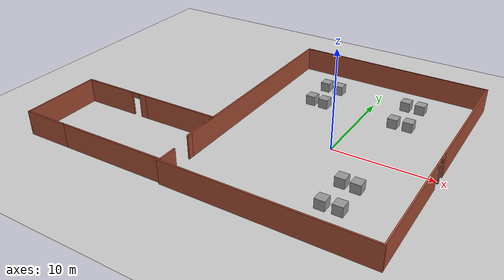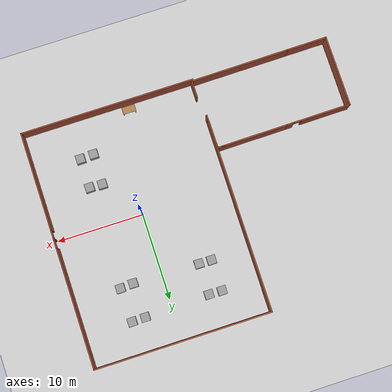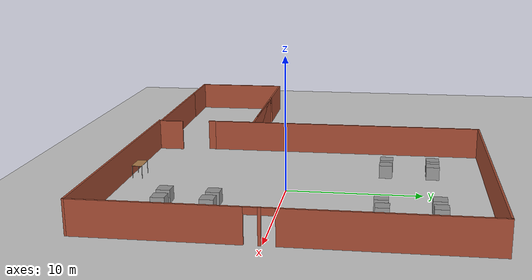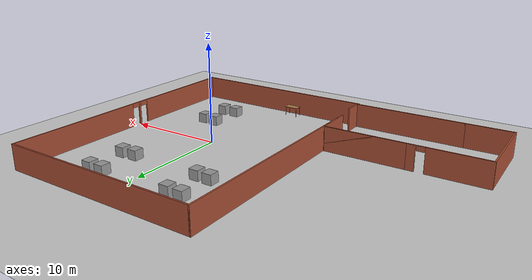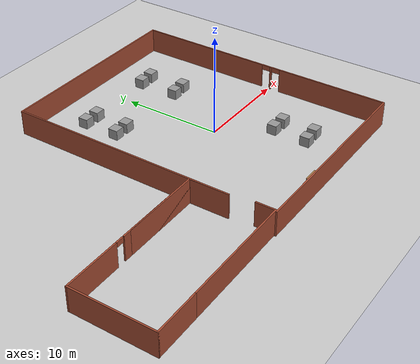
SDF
<sdf version="1.7">
 <world name="default">
  <light name="sun" type="directional">
   <pose>0 0 10 0 -0 0</pose>
   <diffuse>0.8 0.8 0.8 1</diffuse>
   <specular>0.2 0.2 0.2 1</specular>
   <attenuation>
    <range>1000</range>
    <constant>0.9</constant>
    <linear>0.01</linear>
    <quadratic>0.001</quadratic>
   </attenuation>
   <direction>-0.5 0.1 -0.9</direction>
   <spot><inner_angle>0</inner_angle><outer_angle>0</outer_angle><falloff>0</falloff></spot>
  </light>
  <model name="ground_plane">
   <static>1</static>
   <link name="link">
    <collision name="collision">
     <geometry><plane><normal>0 0 1</normal><size>100 100</size></plane></geometry>
     <surface>
      <contact><collide_bitmask>65535</collide_bitmask></contact>
      <friction><ode><mu>100</mu><mu2>50</mu2></ode></friction>
     </surface>
    </collision>
    <visual name="visual">
     <cast_shadows>0</cast_shadows>
     <geometry><plane><normal>0 0 1</normal><size>100 100</size></plane></geometry>
     <material>
      <script><uri>file://media/materials/scripts/gazebo.material</uri><name>Gazebo/Grey</name></script>
     </material>
    </visual>
   </link>
  </model>
  <gravity>0 0 -9.8</gravity>
  <magnetic_field>6e-06 2.3e-05 -4.2e-05</magnetic_field>
  <atmosphere type="adiabatic"/>
  <physics type="ode">
   <max_step_size>0.001</max_step_size>
   <real_time_factor>1</real_time_factor>
   <real_time_update_rate>1000</real_time_update_rate>
  </physics>
  <scene><ambient>0.4 0.4 0.4 1</ambient><background>0.7 0.7 0.7 1</background><shadows>1</shadows></scene>
  <audio><device>default</device></audio>
  <spherical_coordinates>
   <surface_model>EARTH_WGS84</surface_model>
   <latitude_deg>0</latitude_deg>
   <longitude_deg>0</longitude_deg>
   <elevation>0</elevation>
   <heading_deg>0</heading_deg>
  </spherical_coordinates>
  <model name="cafe_new_main">
   <pose>-0.0419 1.10315 0 0 -0 0</pose>
   <link name="Wall_0">
    <collision name="Wall_0_Collision">
     <geometry><box><size>22.5 0.15 2.5</size></box></geometry>
     <pose>0 0 1.25 0 -0 0</pose>
    </collision>
    <visual name="Wall_0_Visual">
     <pose>0 0 1.25 0 -0 0</pose>
     <geometry><box><size>22.5 0.15 2.5</size></box></geometry>
     <material>
      <script><uri>file://media/materials/scripts/gazebo.material</uri><name>Gazebo/Bricks</name></script>
      <ambient>1 1 1 1</ambient>
     </material>
     <meta><layer>0</layer></meta>
    </visual>
    <pose>-10.175 2.5 0 0 -0 1.5708</pose>
   </link>
   <link name="Wall_1">
    <collision name="Wall_1_Collision">
     <geometry><box><size>20.5 0.15 2.5</size></box></geometry>
     <pose>0 0 1.25 0 -0 0</pose>
    </collision>
    <visual name="Wall_1_Visual">
     <pose>0 0 1.25 0 -0 0</pose>
     <geometry><box><size>20.5 0.15 2.5</size></box></geometry>
     <material>
      <script><uri>file://media/materials/scripts/gazebo.material</uri><name>Gazebo/Bricks</name></script>
      <ambient>1 1 1 1</ambient>
     </material>
     <meta><layer>0</layer></meta>
    </visual>
    <pose>-0 13.675 0 0 -0 0</pose>
   </link>
   <link name="Wall_2">
    <pose>10.175 -0 0 0 -0 -1.5708</pose>
    <visual name="Wall_2_Visual_0">
     <pose>-6.74643 0 1.25 0 -0 0</pose>
     <geometry><box><size>14.0071 0.15 2.5</size></box></geometry>
     <material>
      <script><uri>file://media/materials/scripts/gazebo.material</uri><name>Gazebo/Bricks</name></script>
      <ambient>1 1 1 1</ambient>
     </material>
     <meta><layer>0</layer></meta>
    </visual>
    <collision name="Wall_2_Collision_0">
     <geometry><box><size>14.0071 0.15 2.5</size></box></geometry>
     <pose>-6.74643 0 1.25 0 -0 0</pose>
    </collision>
    <visual name="Wall_2_Visual_1">
     <pose>1.26403 0 1.25 0 -0 0</pose>
     <geometry><box><size>0.213791 0.15 2.5</size></box></geometry>
     <material>
      <script><uri>file://media/materials/scripts/gazebo.material</uri><name>Gazebo/Bricks</name></script>
      <ambient>1 1 1 1</ambient>
     </material>
     <meta><layer>0</layer></meta>
    </visual>
    <collision name="Wall_2_Collision_1">
     <geometry><box><size>0.213791 0.15 2.5</size></box></geometry>
     <pose>1.26403 0 1.25 0 -0 0</pose>
    </collision>
    <visual name="Wall_2_Visual_2">
     <pose>8.01046 0 1.25 0 -0 0</pose>
     <geometry><box><size>11.4791 0.15 2.5</size></box></geometry>
     <material>
      <script><uri>file://media/materials/scripts/gazebo.material</uri><name>Gazebo/Bricks</name></script>
      <ambient>1 1 1 1</ambient>
     </material>
     <meta><layer>0</layer></meta>
    </visual>
    <collision name="Wall_2_Collision_2">
     <geometry><box><size>11.4791 0.15 2.5</size></box></geometry>
     <pose>8.01046 0 1.25 0 -0 0</pose>
    </collision>
    <visual name="Wall_2_Visual_3">
     <pose>0.707133 0 2.25 0 -0 0</pose>
     <geometry><box><size>0.9 0.15 0.5</size></box></geometry>
     <material>
      <script><uri>file://media/materials/scripts/gazebo.material</uri><name>Gazebo/Bricks</name></script>
      <ambient>1 1 1 1</ambient>
     </material>
     <meta><layer>0</layer></meta>
    </visual>
    <collision name="Wall_2_Collision_3">
     <geometry><box><size>0.9 0.15 0.5</size></box></geometry>
     <pose>0.707133 0 2.25 0 -0 0</pose>
    </collision>
    <visual name="Wall_2_Visual_4">
     <pose>1.82092 0 2.25 0 -0 0</pose>
     <geometry><box><size>0.9 0.15 0.5</size></box></geometry>
     <material>
      <script><uri>file://media/materials/scripts/gazebo.material</uri><name>Gazebo/Bricks</name></script>
      <ambient>1 1 1 1</ambient>
     </material>
     <meta><layer>0</layer></meta>
    </visual>
    <collision name="Wall_2_Collision_4">
     <geometry><box><size>0.9 0.15 0.5</size></box></geometry>
     <pose>1.82092 0 2.25 0 -0 0</pose>
    </collision>
   </link>
   <link name="Wall_3">
    <collision name="Wall_3_Collision">
     <geometry><box><size>20.25 0.15 2.5</size></box></geometry>
     <pose>0 0 1.25 0 -0 0</pose>
    </collision>
    <visual name="Wall_3_Visual">
     <pose>0 0 1.25 0 -0 0</pose>
     <geometry><box><size>20.25 0.15 2.5</size></box></geometry>
     <material>
      <script><uri>file://media/materials/scripts/gazebo.material</uri><name>Gazebo/Bricks</name></script>
      <ambient>1 1 1 1</ambient>
     </material>
     <meta><layer>0</layer></meta>
    </visual>
    <pose>0.125 -13.675 0 0 -0 3.14159</pose>
   </link>
   <static>1</static>
  </model>
  <model name="cafe_new">
   <pose>-17.8378 -8.4218 0 0 0 -3.13323</pose>
   <link name="Wall_1">
    <collision name="Wall_1_Collision">
     <geometry><box><size>2 0.15 2.5</size></box></geometry>
     <pose>0 0 1.25 0 -0 0</pose>
    </collision>
    <visual name="Wall_1_Visual">
     <pose>0 0 1.25 0 -0 0</pose>
     <geometry><box><size>2 0.15 2.5</size></box></geometry>
     <material>
      <script><uri>file://media/materials/scripts/gazebo.material</uri><name>Gazebo/Bricks</name></script>
      <ambient>1 1 1 1</ambient>
     </material>
     <meta><layer>0</layer></meta>
    </visual>
    <pose>-7.975 3.125 0 0 -0 1.5708</pose>
   </link>
   <link name="Wall_2">
    <collision name="Wall_2_Collision">
     <geometry><box><size>11.5 0.15 2.5</size></box></geometry>
     <pose>0 0 1.25 0 -0 0</pose>
    </collision>
    <visual name="Wall_2_Visual">
     <pose>0 0 1.25 0 -0 0</pose>
     <geometry><box><size>11.5 0.15 2.5</size></box></geometry>
     <material>
      <script><uri>file://media/materials/scripts/gazebo.material</uri><name>Gazebo/Bricks</name></script>
      <ambient>1 1 1 1</ambient>
     </material>
     <meta><layer>0</layer></meta>
    </visual>
    <pose>-2.3 4.05 0 0 -0 0</pose>
   </link>
   <link name="Wall_3">
    <collision name="Wall_3_Collision">
     <geometry><box><size>4.75 0.15 2.5</size></box></geometry>
     <pose>0 0 1.25 0 -0 0</pose>
    </collision>
    <visual name="Wall_3_Visual">
     <pose>0 0 1.25 0 -0 0</pose>
     <geometry><box><size>4.75 0.15 2.5</size></box></geometry>
     <material>
      <script><uri>file://media/materials/scripts/gazebo.material</uri><name>Gazebo/Bricks</name></script>
      <ambient>1 1 1 1</ambient>
     </material>
     <meta><layer>0</layer></meta>
    </visual>
    <pose>5.675 4.05 0 0 -0 0</pose>
   </link>
   <link name="Wall_4">
    <collision name="Wall_4_Collision">
     <geometry><box><size>8.25 0.15 2.5</size></box></geometry>
     <pose>0 0 1.25 0 -0 0</pose>
    </collision>
    <visual name="Wall_4_Visual">
     <pose>0 0 1.25 0 -0 0</pose>
     <geometry><box><size>8.25 0.15 2.5</size></box></geometry>
     <material>
      <script><uri>file://media/materials/scripts/gazebo.material</uri><name>Gazebo/Bricks</name></script>
      <ambient>1 1 1 1</ambient>
     </material>
     <meta><layer>0</layer></meta>
    </visual>
    <pose>7.975 -0 0 0 -0 -1.5708</pose>
   </link>
   <link name="Wall_5">
    <pose>0.175 -4.05 0 0 -0 3.14159</pose>
    <visual name="Wall_5_Visual_0">
     <pose>-4.96927 0 1.25 0 -0 0</pose>
     <geometry><box><size>5.81146 0.15 2.5</size></box></geometry>
     <material>
      <script><uri>file://media/materials/scripts/gazebo.material</uri><name>Gazebo/Bricks</name></script>
      <ambient>1 1 1 1</ambient>
     </material>
     <meta><layer>0</layer></meta>
    </visual>
    <collision name="Wall_5_Collision_0">
     <geometry><box><size>5.81146 0.15 2.5</size></box></geometry>
     <pose>-4.96927 0 1.25 0 -0 0</pose>
    </collision>
    <visual name="Wall_5_Visual_1">
     <pose>3.35573 0 1.25 0 -0 0</pose>
     <geometry><box><size>9.03854 0.15 2.5</size></box></geometry>
     <material>
      <script><uri>file://media/materials/scripts/gazebo.material</uri><name>Gazebo/Bricks</name></script>
      <ambient>1 1 1 1</ambient>
     </material>
     <meta><layer>0</layer></meta>
    </visual>
    <collision name="Wall_5_Collision_1">
     <geometry><box><size>9.03854 0.15 2.5</size></box></geometry>
     <pose>3.35573 0 1.25 0 -0 0</pose>
    </collision>
    <visual name="Wall_5_Visual_2">
     <pose>3.76029 0 1.25 0 -0 0</pose>
     <geometry><box><size>8.22943 0.15 2.5</size></box></geometry>
     <material>
      <script><uri>file://media/materials/scripts/gazebo.material</uri><name>Gazebo/Bricks</name></script>
      <ambient>1 1 1 1</ambient>
     </material>
     <meta><layer>0</layer></meta>
    </visual>
    <collision name="Wall_5_Collision_2">
     <geometry><box><size>8.22943 0.15 2.5</size></box></geometry>
     <pose>3.76029 0 1.25 0 -0 0</pose>
    </collision>
    <visual name="Wall_5_Visual_3">
     <pose>-1.65898 0 2.25 0 -0 0</pose>
     <geometry><box><size>0.809112 0.15 0.5</size></box></geometry>
     <material>
      <script><uri>file://media/materials/scripts/gazebo.material</uri><name>Gazebo/Bricks</name></script>
      <ambient>1 1 1 1</ambient>
     </material>
     <meta><layer>0</layer></meta>
    </visual>
    <collision name="Wall_5_Collision_3">
     <geometry><box><size>0.809112 0.15 0.5</size></box></geometry>
     <pose>-1.65898 0 2.25 0 -0 0</pose>
    </collision>
   </link>
   <link name="Wall_6">
    <collision name="Wall_6_Collision">
     <geometry><box><size>4 0.15 2.5</size></box></geometry>
     <pose>0 0 1.25 0 -0 0</pose>
    </collision>
    <visual name="Wall_6_Visual">
     <pose>0 0 1.25 0 -0 0</pose>
     <geometry><box><size>4 0.15 2.5</size></box></geometry>
     <material>
      <script><uri>file://media/materials/scripts/gazebo.material</uri><name>Gazebo/Bricks</name></script>
      <ambient>1 1 1 1</ambient>
     </material>
     <meta><layer>0</layer></meta>
    </visual>
    <pose>-7.625 -2.125 0 0 -0 1.5708</pose>
   </link>
   <static>1</static>
  </model>
  <model name="table">
   <static>1</static>
   <link name="link">
    <collision name="surface">
     <pose>0 0 1 0 -0 0</pose>
     <geometry><box><size>1.5 0.8 0.03</size></box></geometry>
     <surface><friction><ode><mu>0.6</mu><mu2>0.6</mu2></ode></friction></surface>
    </collision>
    <visual name="visual1">
     <pose>0 0 1 0 -0 0</pose>
     <geometry><box><size>1.5 0.8 0.03</size></box></geometry>
     <material>
      <script><uri>file://media/materials/scripts/gazebo.material</uri><name>Gazebo/Wood</name></script>
     </material>
    </visual>
    <collision name="front_left_leg">
     <pose>0.68 0.38 0.5 0 -0 0</pose>
     <geometry><cylinder><radius>0.02</radius><length>1</length></cylinder></geometry>
    </collision>
    <visual name="front_left_leg">
     <pose>0.68 0.38 0.5 0 -0 0</pose>
     <geometry><cylinder><radius>0.02</radius><length>1</length></cylinder></geometry>
     <material>
      <script><uri>file://media/materials/scripts/gazebo.material</uri><name>Gazebo/Grey</name></script>
     </material>
    </visual>
    <collision name="front_right_leg">
     <pose>0.68 -0.38 0.5 0 -0 0</pose>
     <geometry><cylinder><radius>0.02</radius><length>1</length></cylinder></geometry>
    </collision>
    <visual name="front_right_leg">
     <pose>0.68 -0.38 0.5 0 -0 0</pose>
     <geometry><cylinder><radius>0.02</radius><length>1</length></cylinder></geometry>
     <material>
      <script><uri>file://media/materials/scripts/gazebo.material</uri><name>Gazebo/Grey</name></script>
     </material>
    </visual>
    <collision name="back_right_leg">
     <pose>-0.68 -0.38 0.5 0 -0 0</pose>
     <geometry><cylinder><radius>0.02</radius><length>1</length></cylinder></geometry>
    </collision>
    <visual name="back_right_leg">
     <pose>-0.68 -0.38 0.5 0 -0 0</pose>
     <geometry><cylinder><radius>0.02</radius><length>1</length></cylinder></geometry>
     <material>
      <script><uri>file://media/materials/scripts/gazebo.material</uri><name>Gazebo/Grey</name></script>
     </material>
    </visual>
    <collision name="back_left_leg">
     <pose>-0.68 0.38 0.5 0 -0 0</pose>
     <geometry><cylinder><radius>0.02</radius><length>1</length></cylinder></geometry>
    </collision>
    <visual name="back_left_leg">
     <pose>-0.68 0.38 0.5 0 -0 0</pose>
     <geometry><cylinder><radius>0.02</radius><length>1</length></cylinder></geometry>
     <material>
      <script><uri>file://media/materials/scripts/gazebo.material</uri><name>Gazebo/Grey</name></script>
     </material>
    </visual>
   </link>
   <pose>-2.15948 -11.8384 0 0 -0 0</pose>
  </model>
  <model name="unit_box">
   <pose>4.72104 11.0868 0.499995 -1e-05 -0 -0</pose>
   <link name="link">
    <inertial>
     <mass>1</mass>
     <inertia>
      <ixx>0.166667</ixx>
      <ixy>0</ixy>
      <ixz>0</ixz>
      <iyy>0.166667</iyy>
      <iyz>0</iyz>
      <izz>0.166667</izz>
     </inertia>
    </inertial>
    <collision name="collision"><geometry><box><size>1 1 1</size></box></geometry></collision>
    <visual name="visual">
     <geometry><box><size>1 1 1</size></box></geometry>
     <material>
      <script><name>Gazebo/Grey</name><uri>file://media/materials/scripts/gazebo.material</uri></script>
     </material>
    </visual>
   </link>
  </model>
  <model name="unit_box_0">
   <pose>3.19605 11.0505 0.499995 0 1e-05 0</pose>
   <link name="link">
    <inertial>
     <mass>1</mass>
     <inertia>
      <ixx>0.166667</ixx>
      <ixy>0</ixy>
      <ixz>0</ixz>
      <iyy>0.166667</iyy>
      <iyz>0</iyz>
      <izz>0.166667</izz>
     </inertia>
    </inertial>
    <collision name="collision"><geometry><box><size>1 1 1</size></box></geometry></collision>
    <visual name="visual">
     <geometry><box><size>1 1 1</size></box></geometry>
     <material>
      <script><name>Gazebo/Grey</name><uri>file://media/materials/scripts/gazebo.material</uri></script>
     </material>
    </visual>
   </link>
  </model>
  <model name="unit_box_1">
   <pose>4.86627 7.1654 0.499995 -1e-05 -0 -0</pose>
   <link name="link">
    <inertial>
     <mass>1</mass>
     <inertia>
      <ixx>0.166667</ixx>
      <ixy>0</ixy>
      <ixz>0</ixz>
      <iyy>0.166667</iyy>
      <iyz>0</iyz>
      <izz>0.166667</izz>
     </inertia>
    </inertial>
    <collision name="collision"><geometry><box><size>1 1 1</size></box></geometry></collision>
    <visual name="visual">
     <geometry><box><size>1 1 1</size></box></geometry>
     <material>
      <script><name>Gazebo/Grey</name><uri>file://media/materials/scripts/gazebo.material</uri></script>
     </material>
    </visual>
   </link>
  </model>
  <model name="unit_box_2">
   <pose>3.34127 7.05638 0.499995 0 1e-05 0</pose>
   <link name="link">
    <inertial>
     <mass>1</mass>
     <inertia>
      <ixx>0.166667</ixx>
      <ixy>0</ixy>
      <ixz>0</ixz>
      <iyy>0.166667</iyy>
      <iyz>0</iyz>
      <izz>0.166667</izz>
     </inertia>
    </inertial>
    <collision name="collision"><geometry><box><size>1 1 1</size></box></geometry></collision>
    <visual name="visual">
     <geometry><box><size>1 1 1</size></box></geometry>
     <material>
      <script><name>Gazebo/Grey</name><uri>file://media/materials/scripts/gazebo.material</uri></script>
     </material>
    </visual>
   </link>
  </model>
  <model name="unit_box_3">
   <pose>-4.32003 10.8327 0.499995 -1e-05 -0 -0</pose>
   <link name="link">
    <inertial>
     <mass>1</mass>
     <inertia>
      <ixx>0.166667</ixx>
      <ixy>0</ixy>
      <ixz>0</ixz>
      <iyy>0.166667</iyy>
      <iyz>0</iyz>
      <izz>0.166667</izz>
     </inertia>
    </inertial>
    <collision name="collision"><geometry><box><size>1 1 1</size></box></geometry></collision>
    <visual name="visual">
     <geometry><box><size>1 1 1</size></box></geometry>
     <material>
      <script><name>Gazebo/Grey</name><uri>file://media/materials/scripts/gazebo.material</uri></script>
     </material>
    </visual>
   </link>
  </model>
  <model name="unit_box_4">
   <pose>-5.84502 10.8691 0.499995 0 1e-05 0</pose>
   <link name="link">
    <inertial>
     <mass>1</mass>
     <inertia>
      <ixx>0.166667</ixx>
      <ixy>0</ixy>
      <ixz>0</ixz>
      <iyy>0.166667</iyy>
      <iyz>0</iyz>
      <izz>0.166667</izz>
     </inertia>
    </inertial>
    <collision name="collision"><geometry><box><size>1 1 1</size></box></geometry></collision>
    <visual name="visual">
     <geometry><box><size>1 1 1</size></box></geometry>
     <material>
      <script><name>Gazebo/Grey</name><uri>file://media/materials/scripts/gazebo.material</uri></script>
     </material>
    </visual>
   </link>
  </model>
  <model name="unit_box_5">
   <pose>-4.32003 7.23803 0.499995 -1e-05 -0 -0</pose>
   <link name="link">
    <inertial>
     <mass>1</mass>
     <inertia>
      <ixx>0.166667</ixx>
      <ixy>0</ixy>
      <ixz>0</ixz>
      <iyy>0.166667</iyy>
      <iyz>0</iyz>
      <izz>0.166667</izz>
     </inertia>
    </inertial>
    <collision name="collision"><geometry><box><size>1 1 1</size></box></geometry></collision>
    <visual name="visual">
     <geometry><box><size>1 1 1</size></box></geometry>
     <material>
      <script><name>Gazebo/Grey</name><uri>file://media/materials/scripts/gazebo.material</uri></script>
     </material>
    </visual>
   </link>
  </model>
  <model name="unit_box_6">
   <pose>-5.7724 7.27426 0.499995 0 1e-05 0</pose>
   <link name="link">
    <inertial>
     <mass>1</mass>
     <inertia>
      <ixx>0.166667</ixx>
      <ixy>0</ixy>
      <ixz>0</ixz>
      <iyy>0.166667</iyy>
      <iyz>0</iyz>
      <izz>0.166667</izz>
     </inertia>
    </inertial>
    <collision name="collision"><geometry><box><size>1 1 1</size></box></geometry></collision>
    <visual name="visual">
     <geometry><box><size>1 1 1</size></box></geometry>
     <material>
      <script><name>Gazebo/Grey</name><uri>file://media/materials/scripts/gazebo.material</uri></script>
     </material>
    </visual>
   </link>
  </model>
  <model name="unit_box_7">
   <pose>4.75736 -4.70777 0.499995 -1e-05 -0 -0</pose>
   <link name="link">
    <inertial>
     <mass>1</mass>
     <inertia>
      <ixx>0.166667</ixx>
      <ixy>0</ixy>
      <ixz>0</ixz>
      <iyy>0.166667</iyy>
      <iyz>0</iyz>
      <izz>0.166667</izz>
     </inertia>
    </inertial>
    <collision name="collision"><geometry><box><size>1 1 1</size></box></geometry></collision>
    <visual name="visual">
     <geometry><box><size>1 1 1</size></box></geometry>
     <material>
      <script><name>Gazebo/Grey</name><uri>file://media/materials/scripts/gazebo.material</uri></script>
     </material>
    </visual>
   </link>
  </model>
  <model name="unit_box_8">
   <pose>3.27623 -4.63909 0.499995 0 1e-05 0</pose>
   <link name="link">
    <inertial>
     <mass>1</mass>
     <inertia>
      <ixx>0.166667</ixx>
      <ixy>0</ixy>
      <ixz>0</ixz>
      <iyy>0.166667</iyy>
      <iyz>0</iyz>
      <izz>0.166667</izz>
     </inertia>
    </inertial>
    <collision name="collision"><geometry><box><size>1 1 1</size></box></geometry></collision>
    <visual name="visual">
     <geometry><box><size>1 1 1</size></box></geometry>
     <material>
      <script><name>Gazebo/Grey</name><uri>file://media/materials/scripts/gazebo.material</uri></script>
     </material>
    </visual>
   </link>
  </model>
  <model name="unit_box_9">
   <pose>4.76495 -8.12505 0.499995 -1e-05 -0 -0</pose>
   <link name="link">
    <inertial>
     <mass>1</mass>
     <inertia>
      <ixx>0.166667</ixx>
      <ixy>0</ixy>
      <ixz>0</ixz>
      <iyy>0.166667</iyy>
      <iyz>0</iyz>
      <izz>0.166667</izz>
     </inertia>
    </inertial>
    <collision name="collision"><geometry><box><size>1 1 1</size></box></geometry></collision>
    <visual name="visual">
     <geometry><box><size>1 1 1</size></box></geometry>
     <material>
      <script><name>Gazebo/Grey</name><uri>file://media/materials/scripts/gazebo.material</uri></script>
     </material>
    </visual>
   </link>
  </model>
  <model name="unit_box_10">
   <pose>3.20366 -8.1977 0.499995 0 1e-05 0</pose>
   <link name="link">
    <inertial>
     <mass>1</mass>
     <inertia>
      <ixx>0.166667</ixx>
      <ixy>0</ixy>
      <ixz>0</ixz>
      <iyy>0.166667</iyy>
      <iyz>0</iyz>
      <izz>0.166667</izz>
     </inertia>
    </inertial>
    <collision name="collision"><geometry><box><size>1 1 1</size></box></geometry></collision>
    <visual name="visual">
     <geometry><box><size>1 1 1</size></box></geometry>
     <material>
      <script><name>Gazebo/Grey</name><uri>file://media/materials/scripts/gazebo.material</uri></script>
     </material>
    </visual>
   </link>
  </model>
 </world>
</sdf>
